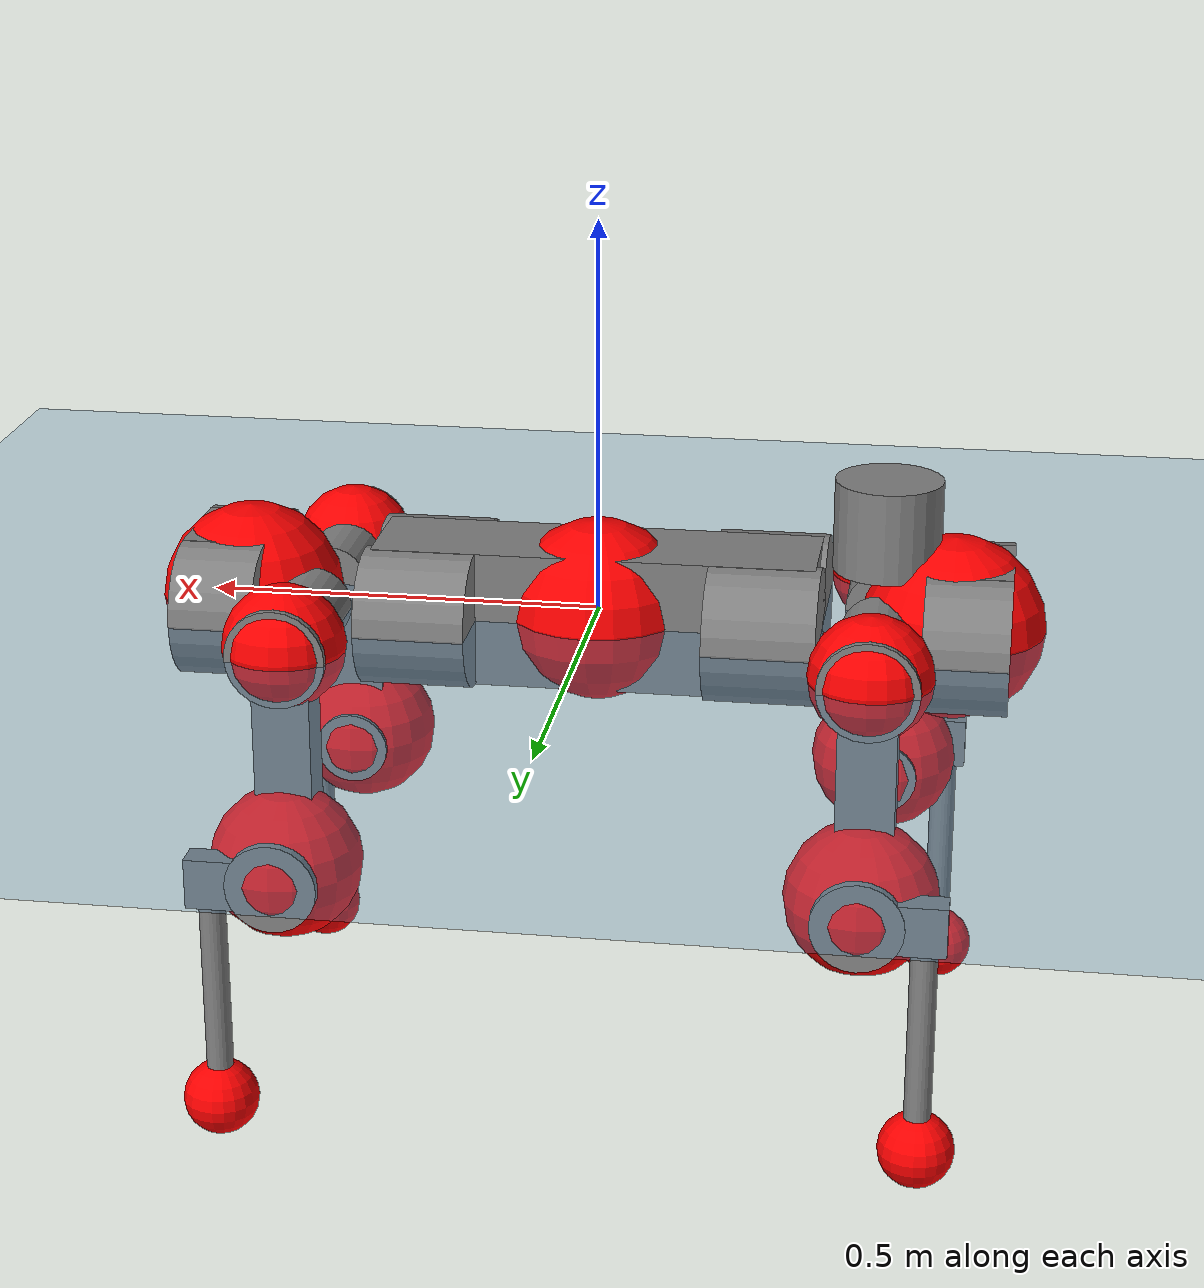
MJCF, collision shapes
<mujoco model="anymal_c">
  <compiler angle="radian" assetdir="assets" balanceinertia="true" inertiafromgeom="false"/>

  <option timestep="0.005" density="1.2" viscosity="2e-05"/>

  <size nkey="1"/>

  <visual>
    <quality shadowsize="8192"/>
    <map shadowclip="0.5"/>
  </visual>

  <default>
    <default class="/">
      <material specular="0" shininess="0.25"/>
      <geom contype="0" conaffinity="0" group="1" solref="-1000 -80"/>
      <site size="0.01 0.005 0.005" group="5"/>
      <general forcelimited="true" forcerange="-80 80" biastype="affine" gainprm="80" biasprm="0 -80 -2"/>
      <default class="anymal_c">
        <joint armature="0.01" damping="0.01" frictionloss="0.1"/>
        <default class="visual">
          <geom type="mesh" group="2"/>
          <default class="visual_zflip"/>
        </default>
        <default class="collision">
          <geom type="cylinder" group="3"/>
          <default class="foot">
            <geom size="0.03 0 0" type="sphere" condim="6" priority="1" friction="0.8 0.02 0.01" solimp="0.015 1 0.03"/>
          </default>
        </default>
      </default>
      <default class="reward_collision_sphere">
        <geom group="5" rgba="1 0 0 1"/>
      </default>
    </default>
  </default>

  <asset>
    <texture type="skybox" colorspace="auto" name="//unnamed_texture_0" builtin="gradient" rgb1="0.95 0.95 0.95" rgb2="0.95 0.95 0.95" width="100" height="600"/>
    <texture type="2d" colorspace="auto" name="texplane" builtin="checker" rgb1="0.345 0.575 0.748" rgb2="0.345 0.575 0.748" markrgb="1 1 1" width="512" height="512"/>
    <texture type="2d" colorspace="linear" name="base" file="base.png"/>
    <texture type="2d" colorspace="linear" name="top_shell" file="top_shell.png"/>
    <texture type="2d" colorspace="linear" name="bottom_shell" file="bottom_shell.png"/>
    <texture type="2d" colorspace="linear" name="remote" file="remote.png"/>
    <texture type="2d" colorspace="linear" name="hatch" file="hatch.png"/>
    <texture type="2d" colorspace="linear" name="handle" file="handle.png"/>
    <texture type="2d" colorspace="linear" name="face" file="face.png"/>
    <texture type="2d" colorspace="linear" name="battery" file="battery.png"/>
    <texture type="2d" colorspace="linear" name="lidar_cage" file="lidar_cage.png"/>
    <texture type="2d" colorspace="linear" name="depth_camera" file="depth_camera.png"/>
    <texture type="2d" colorspace="linear" name="wide_angle_camera" file="wide_angle_camera.png"/>
    <texture type="2d" colorspace="linear" name="lidar" file="lidar.png"/>
    <texture type="2d" colorspace="linear" name="drive" file="drive.png"/>
    <texture type="2d" colorspace="linear" name="hip_l" file="hip_l.png"/>
    <texture type="2d" colorspace="linear" name="shank_l" file="shank_l.png"/>
    <texture type="2d" colorspace="linear" name="foot" file="foot.png"/>
    <texture type="2d" colorspace="linear" name="thigh" file="thigh.png"/>
    <texture type="2d" colorspace="linear" name="shank_r" file="shank_r.png"/>
    <texture type="2d" colorspace="linear" name="hip_r" file="hip_r.png"/>
    <material name="MatPlane" class="/" texture="texplane" texuniform="true" texrepeat="2 2" specular="0.9" shininess="0.5"/>
    <material name="black_plastic" class="/" rgba="0.007 0.007 0.007 1"/>
    <material name="green" class="/" rgba="0.052 0.178 0.033 1"/>
    <material name="red" class="/" rgba="0.178 0.006 0.005 1"/>
    <material name="yellow" class="/" rgba="0.178 0.119 0.006 1"/>
    <material name="lwl" class="/" rgba="0.8 0.8 0.8 1"/>
    <material name="base" class="/" texture="base"/>
    <material name="top_shell" class="/" texture="top_shell"/>
    <material name="bottom_shell" class="/" texture="bottom_shell"/>
    <material name="hip_l" class="/" texture="hip_l"/>
    <material name="thigh" class="/" texture="thigh"/>
    <material name="shank_l" class="/" texture="shank_l"/>
    <material name="foot" class="/" texture="foot"/>
    <material name="hip_r" class="/" texture="hip_r"/>
    <material name="shank" class="/" texture="shank_r"/>
    <material name="hatch" class="/" texture="hatch"/>
    <material name="remote" class="/" texture="remote"/>
    <material name="handle" class="/" texture="handle"/>
    <material name="face" class="/" texture="face"/>
    <material name="depth_camera" class="/" texture="depth_camera"/>
    <material name="wide_angle_camera" class="/" texture="wide_angle_camera"/>
    <material name="battery" class="/" texture="battery"/>
    <material name="lidar_cage" class="/" texture="lidar_cage"/>
    <material name="lidar" class="/" texture="lidar"/>
    <material name="drive" class="/" texture="drive"/>
    <mesh name="base_0" class="/" file="base_0.obj"/>
    <mesh name="base_1" class="/" file="base_1.obj"/>
    <mesh name="base_2" class="/" file="base_2.obj"/>
    <mesh name="base_3" class="/" file="base_3.obj"/>
    <mesh name="base_4" class="/" file="base_4.obj"/>
    <mesh name="base_5" class="/" file="base_5.obj"/>
    <mesh name="top_shell" class="/" file="top_shell.obj"/>
    <mesh name="bottom_shell" class="/" file="bottom_shell.obj"/>
    <mesh name="remote" class="/" file="remote.obj"/>
    <mesh name="handle" class="/" file="handle.obj"/>
    <mesh name="face" class="/" file="face.obj"/>
    <mesh name="wide_angle_camera" class="/" file="wide_angle_camera.obj"/>
    <mesh name="depth_camera" class="/" file="depth_camera.obj"/>
    <mesh name="battery" class="/" file="battery.obj"/>
    <mesh name="lidar_cage" class="/" file="lidar_cage.obj"/>
    <mesh name="lidar" class="/" file="lidar.obj"/>
    <mesh name="drive" class="/" file="drive.obj"/>
    <mesh name="hip_l" class="/" file="hip_l.obj"/>
    <mesh name="thigh" class="/" file="thigh.obj"/>
    <mesh name="shank_l" class="/" file="shank_l.obj"/>
    <mesh name="foot" class="/" file="foot.obj"/>
    <mesh name="hip_r" class="/" file="hip_r.obj"/>
    <mesh name="hatch" class="/" file="hatch.obj"/>
    <mesh name="shank_r" class="/" file="shank_r.obj"/>
  </asset>

  <worldbody>
    <geom name="floor" class="/" size="100 100 0.125" type="plane" group="0" material="MatPlane"/>
    <light name="toplight_shadow" class="/" pos="0 0 5" dir="0.0990148 0.0990148 -0.990148" type="directional" ambient="0.04 0.04 0.04" diffuse="0.55 0.55 0.55" specular="0.12 0.12 0.12"/>
    <light name="toplight_fill" class="/" pos="0 0 5" dir="0.0990148 0.0990148 -0.990148" type="directional" castshadow="false" ambient="0.04 0.04 0.04" diffuse="0.3 0.3 0.3" specular="0.08 0.08 0.08"/>
    <body name="trunk" childclass="anymal_c" pos="-8.40507e-05 -1.25082e-05 0.000214017" quat="1 -3.41237e-05 0.000133501 8.56566e-05">
      <inertial pos="0.00228424 0.00127814 0.0475164" quat="0.500038 0.500005 0.499956 0.500001" mass="17.4353" diaginertia="0.644628 0.419057 0.192422"/>
      <joint name="//unnamed_joint_0" type="free" armature="0" damping="0" frictionloss="0"/>
      <geom name="//unnamed_geom_1" class="visual" material="green" mesh="base_0"/>
      <geom name="//unnamed_geom_2" class="visual" material="yellow" mesh="base_1"/>
      <geom name="//unnamed_geom_3" class="visual" material="red" mesh="base_2"/>
      <geom name="//unnamed_geom_4" class="visual" material="black_plastic" mesh="base_3"/>
      <geom name="//unnamed_geom_5" class="visual" material="lwl" mesh="base_4"/>
      <geom name="//unnamed_geom_6" class="visual" material="base" mesh="base_5"/>
      <geom name="trunk_1" class="collision" size="0.279645 0.0675004 0.0867862" type="box"/>
      <geom name="trunk_2" class="collision" size="0.0867862 0.0699111" pos="0.217019 0.0644987 0" quat="0.707107 0 0.707107 0"/>
      <geom name="trunk_3" class="collision" size="0.0867862 0.0699111" pos="-0.217019 0.0644987 0" quat="0.707107 0 0.707107 0"/>
      <geom name="trunk_4" class="collision" size="0.0867862 0.0699111" pos="0.217019 -0.0644987 0" quat="0.707107 0 0.707107 0"/>
      <geom name="trunk_5" class="collision" size="0.0867862 0.0699111" pos="-0.217019 -0.0644987 0" quat="0.707107 0 0.707107 0"/>
      <geom name="//unnamed_geom_12" class="visual" material="top_shell" mesh="top_shell"/>
      <geom name="//unnamed_geom_13" class="visual" material="bottom_shell" mesh="bottom_shell"/>
      <geom name="//unnamed_geom_14" class="visual" material="remote" mesh="remote"/>
      <geom name="//unnamed_geom_15" class="visual" material="handle" mesh="handle"/>
      <geom name="//unnamed_geom_16" class="visual" pos="0.413583 0 0" quat="1 0 0 0" material="face" mesh="face"/>
      <geom name="trunk_6" class="collision" size="0.053036 0.0675004 0.0867862" pos="0.468462 0 0" type="box"/>
      <geom name="//unnamed_geom_18" class="collision" size="0.0867862 0.053036" pos="0.468462 0.0644987 0" quat="0.707107 0 0.707107 0"/>
      <geom name="//unnamed_geom_19" class="collision" size="0.0867862 0.053036" pos="0.468462 -0.0644987 0" quat="0.707107 0 0.707107 0"/>
      <geom name="//unnamed_geom_20" class="visual" pos="0.460628 0 -0.0282481" quat="0.965926 0 0.258819 0" material="depth_camera" mesh="depth_camera"/>
      <geom name="//unnamed_geom_21" class="visual" pos="0.511866 0 0.0145759" material="wide_angle_camera" mesh="wide_angle_camera"/>
      <geom name="//unnamed_geom_22" class="visual_zflip" pos="-0.413583 0 0" quat="0 0 0 1" material="face" mesh="face"/>
      <geom name="trunk_7" class="collision" size="0.053036 0.0675004 0.0867862" pos="-0.468462 0 0" quat="0 0 0 1" type="box"/>
      <geom name="//unnamed_geom_24" class="collision" size="0.0867862 0.053036" pos="-0.468462 -0.0644987 0" quat="0 -0.707107 0 0.707107"/>
      <geom name="//unnamed_geom_25" class="collision" size="0.0867862 0.053036" pos="-0.468462 0.0644987 0" quat="0 -0.707107 0 0.707107"/>
      <geom name="//unnamed_geom_26" class="visual" pos="-0.460628 0 -0.0282481" quat="0 -0.258819 0 0.965926" material="depth_camera" mesh="depth_camera"/>
      <geom name="//unnamed_geom_27" class="visual_zflip" pos="-0.511866 0 0.0145759" quat="0 0 0 1" material="wide_angle_camera" mesh="wide_angle_camera"/>
      <geom name="//unnamed_geom_28" class="visual" material="battery" mesh="battery"/>
      <geom name="//unnamed_geom_29" class="visual" pos="0 0.0694478 0.0284685" quat="0.683013 -0.183013 0.183013 0.683013" material="depth_camera" mesh="depth_camera"/>
      <geom name="//unnamed_geom_30" class="visual" pos="0 -0.0694478 0.0284685" quat="0.683013 0.183013 0.183013 -0.683013" material="depth_camera" mesh="depth_camera"/>
      <geom name="//unnamed_geom_31" class="visual" pos="-0.363195 0 0.0715652" quat="1 0 0 0" material="lidar_cage" mesh="lidar_cage"/>
      <geom name="trunk_8" class="collision" size="0.0675004 0.0578575" pos="-0.363195 0 0.129986"/>
      <geom name="//unnamed_geom_33" class="visual" pos="-0.363195 -3.0007e-05 0.138457" quat="0.707107 0 0 -0.707107" material="lidar" mesh="lidar"/>
      <geom name="//unnamed_geom_34" class="visual" pos="0.299237 0.0958452 -9.01581e-10" quat="0.258819 0.965926 0 0" material="drive" mesh="drive"/>
      <geom name="//unnamed_geom_35" class="visual" pos="0.299237 -0.0958452 9.01581e-10" quat="0.258819 -0.965926 0 0" material="drive" mesh="drive"/>
      <geom name="//unnamed_geom_36" class="visual" pos="-0.299237 0.0958452 9.01581e-10" quat="0 0 0.965926 -0.258819" material="drive" mesh="drive"/>
      <geom name="//unnamed_geom_37" class="visual" pos="-0.299237 -0.0958452 -9.01581e-10" quat="0 0 -0.965926 -0.258819" material="drive" mesh="drive"/>
      <geom name="//unnamed_geom_38" class="visual" pos="0.115743 0 0.0710783" quat="1 0 0 0" material="hatch" mesh="hatch"/>
      <geom name="//unnamed_geom_39" class="reward_collision_sphere" size="0.115715"/>
      <geom name="//unnamed_geom_40" class="reward_collision_sphere" size="0.115715" pos="0.449005 0 0"/>
      <geom name="//unnamed_geom_41" class="reward_collision_sphere" size="0.115715" pos="-0.449005 0 0"/>
      <site name="imu" pos="0.244656 0.0121202 0.0408859" size="0.00964292"/>
      <camera name="track" pos="0 -1.84282 0" quat="0.707107 0.707107 0 0" mode="trackcom"/>
      <camera name="ego_camera" pos="0.449005 0 -0.038947" quat="-0.5 -0.5 0.5 0.5"/>
      <body name="LF_HIP" pos="0.299893 0.0965099 0.0010203" quat="0.25905 0.965864 -6.242e-05 8.93773e-06">
        <inertial pos="0.0558592 -0.0135118 -0.00697307" quat="-0.127997 0.70836 -0.133909 0.681111" mass="2.51247" diaginertia="0.00582083 0.00332138 0.00286464"/>
        <joint name="LF_HAA" pos="0 0 0" axis="0.999997 0.00198651 0.0016298" range="-0.700114 0.486392" armature="0.0093158" damping="0.00532312" frictionloss="0.0936876"/>
        <geom name="//unnamed_geom_42" class="visual" pos="0 -5.30359e-05 8.71111e-06" quat="0.258819 -0.965926 0 0" material="hip_l" mesh="hip_l"/>
        <geom name="//unnamed_geom_43" class="visual" pos="0.0597675 -0.071434 -0.041629" quat="0.183013 -0.683013 0.683013 0.183013" material="drive" mesh="drive"/>
        <geom name="//unnamed_geom_44" class="collision" size="0.0482146 0.0675004" pos="0.0597675 -0.0110199 -0.00672323" quat="-0.353553 -0.612372 0.612372 -0.353553"/>
        <body name="LF_THIGH" pos="0.0600249 -0.0667233 -0.0415405" quat="0.183009 -0.683029 0.682998 0.183014">
          <inertial pos="0.0312403 -0.00012042 -0.238265" quat="0.993272 -0.00431914 -0.0802331 0.083397" mass="2.71661" diaginertia="0.0300387 0.0196617 0.00354044"/>
          <joint name="LF_HFE" pos="0 0 0" axis="0.999998 -0.000877257 -0.00180064" stiffness="0.00630531" range="-3.13568 3.11878" armature="0.00966976" damping="0.00768469" frictionloss="0.0983824"/>
          <geom name="//unnamed_geom_45" class="visual" pos="0.00151963 2.39458e-06 0" quat="0.707107 0 0 -0.707107" material="thigh" mesh="thigh"/>
          <geom name="//unnamed_geom_46" class="collision" size="0.062679 0.0385717" pos="0.0399115 0 0" quat="0.5 0.5 -0.5 -0.5"/>
          <geom name="//unnamed_geom_47" class="collision" size="0.0361609 0.0289287 0.136268" pos="0.0299337 0 -0.137594" quat="0.707107 0 0 -0.707107" type="box"/>
          <geom name="//unnamed_geom_48" class="visual" pos="0.100078 0 -0.277498" quat="1 0 0 0" material="drive" mesh="drive"/>
          <geom name="//unnamed_geom_49" class="collision" size="0.0482146 0.0675004" pos="0.030233 0 -0.277498" quat="0.707107 0 0.707107 0"/>
          <geom name="//unnamed_geom_50" class="reward_collision_sphere" size="0.0771433" pos="0.0249447 0 0"/>
          <body name="LF_SHANK" pos="0.100522 -0.000847838 -0.27794" quat="1 -5.30999e-05 0.000437014 0.000534488">
            <inertial pos="0.00537985 -0.0564008 -0.0785669" quat="0.99292 -0.116009 -0.000756074 -0.0255042" mass="0.532959" diaginertia="0.0100665 0.00606076 0.000980656"/>
            <joint name="LF_KFE" pos="0 0 0" axis="0.999992 0.00354596 0.00158319" range="-3.13 3.13078" armature="0.00999208" damping="0.0111199" frictionloss="0.0973716"/>
            <geom name="//unnamed_geom_51" class="visual" pos="0.000495517 0.00264212 0" quat="0.707107 0 0 -0.707107" material="shank_l" mesh="shank_l"/>
            <geom name="LF_kfe_act" class="collision" size="0.0578575 0.0192858" pos="0.0199558 0 0" quat="0.5 0.5 -0.5 -0.5"/>
            <geom name="//unnamed_geom_53" class="collision" size="0.0554458 0.0325448 0.0183215" pos="0.0199558 -0.0529802 0" quat="0.5 0.5 -0.5 -0.5" type="box"/>
            <geom name="//unnamed_geom_54" class="visual" pos="0.013021 -0.0801866 -0.329073" quat="0.382683 0 0 -0.92388" material="foot" mesh="foot"/>
            <geom name="LF_calf" class="collision" size="0.0168751 0.136208" pos="0.0130211 -0.081038 -0.164537" quat="0.707107 0 0 -0.707107"/>
            <geom name="LF_foot" class="foot" size="0.0305537" pos="0.0130211 -0.081038 -0.307165" quat="0.707107 0 0 -0.707107"/>
            <geom name="//unnamed_geom_57" class="reward_collision_sphere" size="0.0964292" pos="-0.0498894 0 0"/>
            <geom name="//unnamed_geom_58" class="reward_collision_sphere" size="0.0482146" pos="0.0130211 -0.081038 -0.307165"/>
            <site name="LF_foot" class="foot" pos="0.0130211 -0.081038 -0.307165" quat="0.707107 0 0 -0.707107" size="0.00964292"/>
          </body>
        </body>
      </body>
      <body name="RF_HIP" pos="0.298946 -0.0957908 5.99938e-05" quat="0.258788 -0.965934 -6.44724e-06 -6.19054e-05">
        <inertial pos="0.0564388 0.0149539 -0.00858983" quat="0.136173 0.678661 0.128095 0.710259" mass="2.44671" diaginertia="0.00571353 0.00326514 0.00288064"/>
        <joint name="RF_HAA" pos="0 0 0" axis="0.999999 0.000653849 -0.00151397" range="-0.490316 0.698414" armature="0.0097216" damping="0.00801363" frictionloss="0.0992113"/>
        <geom name="//unnamed_geom_59" class="visual" pos="0 5.30355e-05 8.71109e-06" quat="0.258819 0.965926 0 0" material="hip_r" mesh="hip_r"/>
        <geom name="//unnamed_geom_60" class="visual" pos="0.0597675 0.071434 -0.041629" quat="0.183013 0.683013 0.683013 -0.183013" material="drive" mesh="drive"/>
        <geom name="//unnamed_geom_61" class="collision" size="0.0482146 0.0675004" pos="0.0597675 0.0110199 -0.00672323" quat="-0.353553 0.612372 0.612372 0.353553"/>
        <body name="RF_THIGH" pos="0.061866 0.0662605 -0.0421577" quat="0.183398 0.683157 0.682771 -0.18299">
          <inertial pos="0.0304785 -0.000578308 -0.239041" quat="0.99267 -0.00556139 -0.0816202 0.0889546" mass="2.85007" diaginertia="0.0301251 0.0205494 0.00375991"/>
          <joint name="RF_HFE" pos="0 0 0" axis="0.999975 0.00546558 0.00455266" stiffness="0.00557781" range="-3.10535 3.11488" armature="0.00951274" damping="0.00549533" frictionloss="0.0962344"/>
          <geom name="//unnamed_geom_62" class="visual" pos="0.00151963 2.39458e-06 0" quat="0.707107 0 0 -0.707107" material="thigh" mesh="thigh"/>
          <geom name="//unnamed_geom_63" class="collision" size="0.062679 0.0385717" pos="0.0399115 0 0" quat="0.5 0.5 0.5 0.5"/>
          <geom name="//unnamed_geom_64" class="collision" size="0.0361609 0.0289287 0.136268" pos="0.0299337 0 -0.137594" quat="0.707107 0 0 0.707107" type="box"/>
          <geom name="//unnamed_geom_65" class="visual" pos="0.100078 0 -0.277498" quat="1 0 0 0" material="drive" mesh="drive"/>
          <geom name="//unnamed_geom_66" class="collision" size="0.0482146 0.0675004" pos="0.030233 0 -0.277498" quat="0.707107 0 0.707107 0"/>
          <geom name="//unnamed_geom_67" class="reward_collision_sphere" size="0.0771433" pos="0.0249447 0 0"/>
          <body name="RF_SHANK" pos="0.101163 1.28666e-05 -0.278187" quat="1 6.94293e-05 -0.000171172 0.000117656">
            <inertial pos="0.00646471 0.0564074 -0.076642" quat="0.992791 0.117374 -0.00157061 0.0242361" mass="0.515873" diaginertia="0.00998008 0.00617579 0.000985824"/>
            <joint name="RF_KFE" pos="0 0 0" axis="0.999934 -0.0035085 0.0109066" range="-3.14561 3.12501" armature="0.0096199" damping="0.0108828" frictionloss="0.087368"/>
            <geom name="//unnamed_geom_68" class="visual" pos="0.000495514 -0.00264212 0" quat="0.707107 0 0 0.707107" material="shank" mesh="shank_r"/>
            <geom name="RF_kfe_act" class="collision" size="0.0578575 0.0192858" pos="0.0199558 0 0" quat="0.5 0.5 0.5 0.5"/>
            <geom name="//unnamed_geom_70" class="collision" size="0.0554458 0.0325448 0.0183215" pos="0.0199558 0.0529802 0" quat="0.5 0.5 0.5 0.5" type="box"/>
            <geom name="//unnamed_geom_71" class="visual" pos="0.0130213 0.0801866 -0.329073" quat="0.382683 0 0 0.92388" material="foot" mesh="foot"/>
            <geom name="RF_calf" class="collision" size="0.0168751 0.136208" pos="0.0130211 0.081038 -0.164537" quat="0.707107 0 0 0.707107"/>
            <geom name="RF_foot" class="foot" size="0.0299422" pos="0.0130211 0.081038 -0.307165" quat="0.707107 0 0 0.707107"/>
            <geom name="//unnamed_geom_74" class="reward_collision_sphere" size="0.0964292" pos="-0.0498894 0 0"/>
            <geom name="//unnamed_geom_75" class="reward_collision_sphere" size="0.0482146" pos="0.0130211 0.081038 -0.307165"/>
            <site name="RF_foot" class="foot" pos="0.0130211 0.081038 -0.307165" quat="0.707107 0 0 0.707107" size="0.00964292"/>
          </body>
        </body>
      </body>
      <body name="LH_HIP" pos="-0.299086 0.0964464 0.000301844" quat="1.93542e-05 -1.45008e-05 0.965914 -0.258862">
        <inertial pos="0.0576515 0.013148 -0.00765055" quat="0.134526 0.685236 0.121405 0.705418" mass="2.43094" diaginertia="0.005742 0.00324544 0.00291352"/>
        <joint name="LH_HAA" pos="0 0 0" axis="0.999997 0.00240137 0.000776615" range="-0.491181 0.742344" armature="0.00956267" damping="0.0115934" frictionloss="0.0919029"/>
        <geom name="//unnamed_geom_76" class="visual" pos="0 5.30355e-05 8.71109e-06" quat="-0.258819 -0.965926 0 0" material="hip_r" mesh="hip_r"/>
        <geom name="//unnamed_geom_77" class="visual" pos="0.0597675 0.071434 -0.041629" quat="0.183013 0.683013 0.683013 -0.183013" material="drive" mesh="drive"/>
        <geom name="//unnamed_geom_78" class="collision" size="0.0482146 0.0675004" pos="0.0597675 0.0110199 -0.00672323" quat="-0.353553 0.612372 0.612372 0.353553"/>
        <body name="LH_THIGH" pos="0.0593647 0.0665937 -0.0413026" quat="0.182942 0.682839 0.683196 -0.183047">
          <inertial pos="0.0314708 0.000137939 -0.239068" quat="0.99326 -0.00580057 -0.0769167 0.0865119" mass="2.78286" diaginertia="0.0302357 0.020387 0.00367429"/>
          <joint name="LH_HFE" pos="0 0 0" axis="0.999999 0.000189525 -0.00158876" range="-3.14061 3.14384" armature="0.00960307" damping="0.00601345" frictionloss="0.0966115"/>
          <geom name="//unnamed_geom_79" class="visual" pos="0.00151963 2.39458e-06 0" quat="0.707107 0 0 -0.707107" material="thigh" mesh="thigh"/>
          <geom name="//unnamed_geom_80" class="collision" size="0.062679 0.0385717" pos="0.0399115 0 0" quat="0.5 0.5 -0.5 -0.5"/>
          <geom name="//unnamed_geom_81" class="collision" size="0.0361609 0.0289287 0.136268" pos="0.0299337 0 -0.137594" quat="0.707107 0 0 -0.707107" type="box"/>
          <geom name="//unnamed_geom_82" class="visual" pos="0.100078 0 -0.277498" quat="1 0 0 0" material="drive" mesh="drive"/>
          <geom name="//unnamed_geom_83" class="collision" size="0.0482146 0.0675004" pos="0.030233 0 -0.277498" quat="0.707107 0 0.707107 0"/>
          <geom name="//unnamed_geom_84" class="reward_collision_sphere" size="0.0771433" pos="0.0249447 0 0"/>
          <body name="LH_SHANK" pos="0.100549 -0.00063262 -0.278028" quat="1 -4.868e-05 1.70574e-05 7.90239e-06">
            <inertial pos="0.00562858 0.0570854 -0.0781242" quat="0.992932 0.115917 -0.0010235 0.0254671" mass="0.534709" diaginertia="0.0103765 0.00638081 0.00102972"/>
            <joint name="LH_KFE" pos="0 0 0" axis="0.999991 -0.00368873 0.00195921" range="-3.14056 3.09929" armature="0.00958414" damping="0.00923261" frictionloss="0.0917012"/>
            <geom name="//unnamed_geom_85" class="visual" pos="0.000495514 -0.00264212 0" quat="-0.707107 0 0 -0.707107" material="shank" mesh="shank_r"/>
            <geom name="LH_kfe_act" class="collision" size="0.0578575 0.0192858" pos="0.0199558 0 0" quat="0.5 0.5 -0.5 -0.5"/>
            <geom name="//unnamed_geom_87" class="collision" size="0.0554458 0.0325448 0.0183215" pos="0.0199558 0.0529802 0" quat="0.5 0.5 -0.5 -0.5" type="box"/>
            <geom name="//unnamed_geom_88" class="visual" pos="0.0130213 0.0801866 -0.329073" quat="-0.382683 0 0 -0.92388" material="foot" mesh="foot"/>
            <geom name="LH_calf" class="collision" size="0.0168751 0.136208" pos="0.0130211 0.081038 -0.164537" quat="0.707107 0 0 -0.707107"/>
            <geom name="LH_foot" class="foot" size="0.0286153" pos="0.0130211 0.081038 -0.307165" quat="0.707107 0 0 -0.707107"/>
            <geom name="//unnamed_geom_91" class="reward_collision_sphere" size="0.0964292" pos="-0.0498894 0 0"/>
            <geom name="//unnamed_geom_92" class="reward_collision_sphere" size="0.0482146" pos="0.0130211 0.081038 -0.307165"/>
            <site name="LH_foot" class="foot" pos="0.0130211 0.081038 -0.307165" quat="0.707107 0 0 -0.707107" size="0.00964292"/>
          </body>
        </body>
      </body>
      <body name="RH_HIP" pos="-0.299304 -0.0957345 0.000532291" quat="4.11173e-05 0.0001825 -0.965808 -0.259259">
        <inertial pos="0.0566839 -0.0151792 -0.00728421" quat="-0.135028 0.707032 -0.130465 0.6818" mass="2.51716" diaginertia="0.00578159 0.00332721 0.00289846"/>
        <joint name="RH_HAA" pos="0 0 0" axis="0.999994 -0.00266049 0.00207674" stiffness="0.00224485" range="-0.738756 0.488231" armature="0.00918235" damping="0.00846675" frictionloss="0.0933954"/>
        <geom name="//unnamed_geom_93" class="visual" pos="0 -5.30359e-05 8.71111e-06" quat="-0.258819 0.965926 0 0" material="hip_l" mesh="hip_l"/>
        <geom name="//unnamed_geom_94" class="visual" pos="0.0597675 -0.071434 -0.041629" quat="-0.183013 0.683013 -0.683013 -0.183013" material="drive" mesh="drive"/>
        <geom name="//unnamed_geom_95" class="collision" size="0.0482146 0.0675004" pos="0.0597675 -0.0110199 -0.00672323" quat="0.353553 0.612372 -0.612372 0.353553"/>
        <body name="RH_THIGH" pos="0.0591813 -0.0664677 -0.0425878" quat="-0.183262 0.682944 -0.683046 -0.182894">
          <inertial pos="0.0309506 0.00186823 -0.239856" quat="0.993114 -0.00628001 -0.0811664 0.0842487" mass="2.68639" diaginertia="0.0292267 0.0194465 0.00355759"/>
          <joint name="RH_HFE" pos="0 0 0" axis="0.999997 0.00147623 0.0019569" range="-3.15946 3.12027" armature="0.0106314" damping="0.00800481" frictionloss="0.0938843"/>
          <geom name="//unnamed_geom_96" class="visual" pos="0.00151963 2.39458e-06 0" quat="0.707107 0 0 -0.707107" material="thigh" mesh="thigh"/>
          <geom name="//unnamed_geom_97" class="collision" size="0.062679 0.0385717" pos="0.0399115 0 0" quat="0.5 0.5 0.5 0.5"/>
          <geom name="//unnamed_geom_98" class="collision" size="0.0361609 0.0289287 0.136268" pos="0.0299337 0 -0.137594" quat="0.707107 0 0 0.707107" type="box"/>
          <geom name="//unnamed_geom_99" class="visual" pos="0.100078 0 -0.277498" quat="1 0 0 0" material="drive" mesh="drive"/>
          <geom name="//unnamed_geom_100" class="collision" size="0.0482146 0.0675004" pos="0.030233 0 -0.277498" quat="0.707107 0 0.707107 0"/>
          <geom name="//unnamed_geom_101" class="reward_collision_sphere" size="0.0771433" pos="0.0249447 0 0"/>
          <body name="RH_SHANK" pos="0.0998706 0.000454361 -0.278303" quat="1 -1.61335e-05 3.18689e-05 3.00336e-05">
            <inertial pos="0.00459029 -0.0563752 -0.0785864" quat="0.992795 -0.116739 -0.00877286 -0.025571" mass="0.526599" diaginertia="0.0102177 0.0062478 0.00101547"/>
            <joint name="RH_KFE" pos="0 0 0" axis="1 0.000260665 0.000274995" stiffness="0.000136847" range="-3.11517 3.15369" armature="0.00971947" damping="0.00764364" frictionloss="0.0989549"/>
            <geom name="//unnamed_geom_102" class="visual" pos="0.000495517 0.00264212 0" quat="0.707107 0 0 -0.707107" material="shank_l" mesh="shank_l"/>
            <geom name="RH_kfe_act" class="collision" size="0.0578575 0.0192858" pos="0.0199558 0 0" quat="0.5 0.5 0.5 0.5"/>
            <geom name="//unnamed_geom_104" class="collision" size="0.0554458 0.0325448 0.0183215" pos="0.0199558 -0.0529802 0" quat="0.5 0.5 0.5 0.5" type="box"/>
            <geom name="//unnamed_geom_105" class="visual" pos="0.013021 -0.0801866 -0.329073" quat="0.382683 0 0 -0.92388" material="foot" mesh="foot"/>
            <geom name="RH_calf" class="collision" size="0.0168751 0.136208" pos="0.0130211 -0.081038 -0.164537" quat="0.707107 0 0 0.707107"/>
            <geom name="RH_foot" class="foot" size="0.0250816" pos="0.0130211 -0.081038 -0.307165" quat="0.707107 0 0 0.707107"/>
            <geom name="//unnamed_geom_108" class="reward_collision_sphere" size="0.0964292" pos="-0.0498894 0 0"/>
            <geom name="//unnamed_geom_109" class="reward_collision_sphere" size="0.0482146" pos="0.0130211 -0.081038 -0.307165"/>
            <site name="RH_foot" class="foot" pos="0.0130211 -0.081038 -0.307165" quat="0.707107 0 0 0.707107" size="0.00964292"/>
          </body>
        </body>
      </body>
    </body>
  </worldbody>

  <contact>
    <pair class="/" geom1="floor" geom2="LF_foot" name="//unnamed_contact_0"/>
    <pair class="/" geom1="floor" geom2="RF_foot" name="//unnamed_contact_1"/>
    <pair class="/" geom1="floor" geom2="LH_foot" name="//unnamed_contact_2"/>
    <pair class="/" geom1="floor" geom2="RH_foot" name="//unnamed_contact_3"/>
  </contact>

  <actuator>
    <general name="LF_HAA" class="/" joint="LF_HAA" forcerange="-80.5838 80.5838" gainprm="79.9624" biasprm="0 -79.9624 -1.89025"/>
    <general name="LF_HFE" class="/" joint="LF_HFE" forcerange="-71.9428 71.9428" gainprm="79.9624" biasprm="0 -79.9624 -1.89025"/>
    <general name="LF_KFE" class="/" joint="LF_KFE" forcerange="-77.112 77.112" gainprm="79.9624" biasprm="0 -79.9624 -1.89025"/>
    <general name="RF_HAA" class="/" joint="RF_HAA" forcerange="-78.4723 78.4723" gainprm="79.9624" biasprm="0 -79.9624 -1.89025"/>
    <general name="RF_HFE" class="/" joint="RF_HFE" forcerange="-75.5797 75.5797" gainprm="79.9624" biasprm="0 -79.9624 -1.89025"/>
    <general name="RF_KFE" class="/" joint="RF_KFE" forcerange="-80.1422 80.1422" gainprm="79.9624" biasprm="0 -79.9624 -1.89025"/>
    <general name="LH_HAA" class="/" joint="LH_HAA" forcerange="-76.4115 76.4115" gainprm="79.9624" biasprm="0 -79.9624 -1.89025"/>
    <general name="LH_HFE" class="/" joint="LH_HFE" forcerange="-77.7313 77.7313" gainprm="79.9624" biasprm="0 -79.9624 -1.89025"/>
    <general name="LH_KFE" class="/" joint="LH_KFE" forcerange="-80.7951 80.7951" gainprm="79.9624" biasprm="0 -79.9624 -1.89025"/>
    <general name="RH_HAA" class="/" joint="RH_HAA" forcerange="-72.5716 72.5716" gainprm="79.9624" biasprm="0 -79.9624 -1.89025"/>
    <general name="RH_HFE" class="/" joint="RH_HFE" forcerange="-76.1593 76.1593" gainprm="79.9624" biasprm="0 -79.9624 -1.89025"/>
    <general name="RH_KFE" class="/" joint="RH_KFE" forcerange="-76.7695 76.7695" gainprm="79.9624" biasprm="0 -79.9624 -1.89025"/>
  </actuator>

  <sensor>
    <gyro site="imu" name="imu_angular_velocity"/>
    <velocimeter site="imu" name="imu_linear_velocity"/>
    <framelinvel objtype="site" objname="LF_foot" name="LF_foot_global_linear_velocity"/>
    <framelinvel objtype="site" objname="RF_foot" name="RF_foot_global_linear_velocity"/>
    <framelinvel objtype="site" objname="LH_foot" name="LH_foot_global_linear_velocity"/>
    <framelinvel objtype="site" objname="RH_foot" name="RH_foot_global_linear_velocity"/>
  </sensor>

  <keyframe>
    <key name="home" qpos="0 0 0.55 1 0 0 0 0 0.4 -0.8 0 -0.4 0.8 0 -0.4 0.8 0 0.4 -0.8"/>
  </keyframe>
</mujoco>
